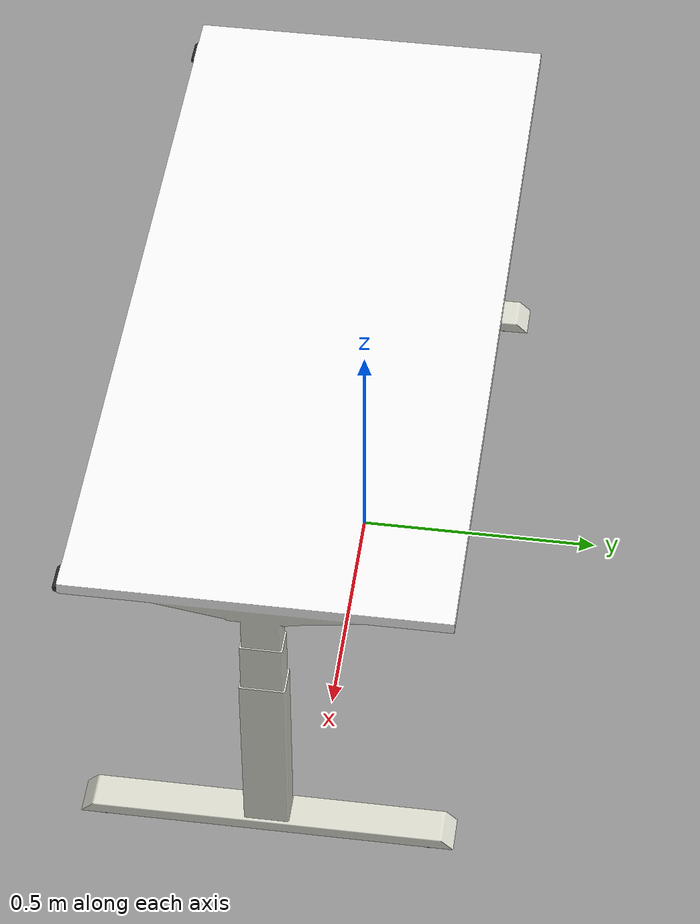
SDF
<?xml version='1.0'?>
<sdf version='1.6'>
  <model name='deskAdjHeight'>
    <static>1</static>
    <link name='link'>
      <pose>0 0 0 0 -0 0</pose>
      <visual name='visual'>
        <pose>0 0 0 0 -0 0</pose>
        <geometry>
          <mesh>
            <uri>deskAdjHeight.dae</uri>
            <scale>1 1 1</scale>
          </mesh>
        </geometry>
      </visual>
      <collision name='collision'>
        <pose>0 0 0 0 -0 0</pose>
        <geometry>
          <mesh>
            <uri>deskAdjHeight.dae</uri>
            <scale>1 1 1</scale>
          </mesh>
        </geometry>
      </collision>
    </link>
  </model>
</sdf>
